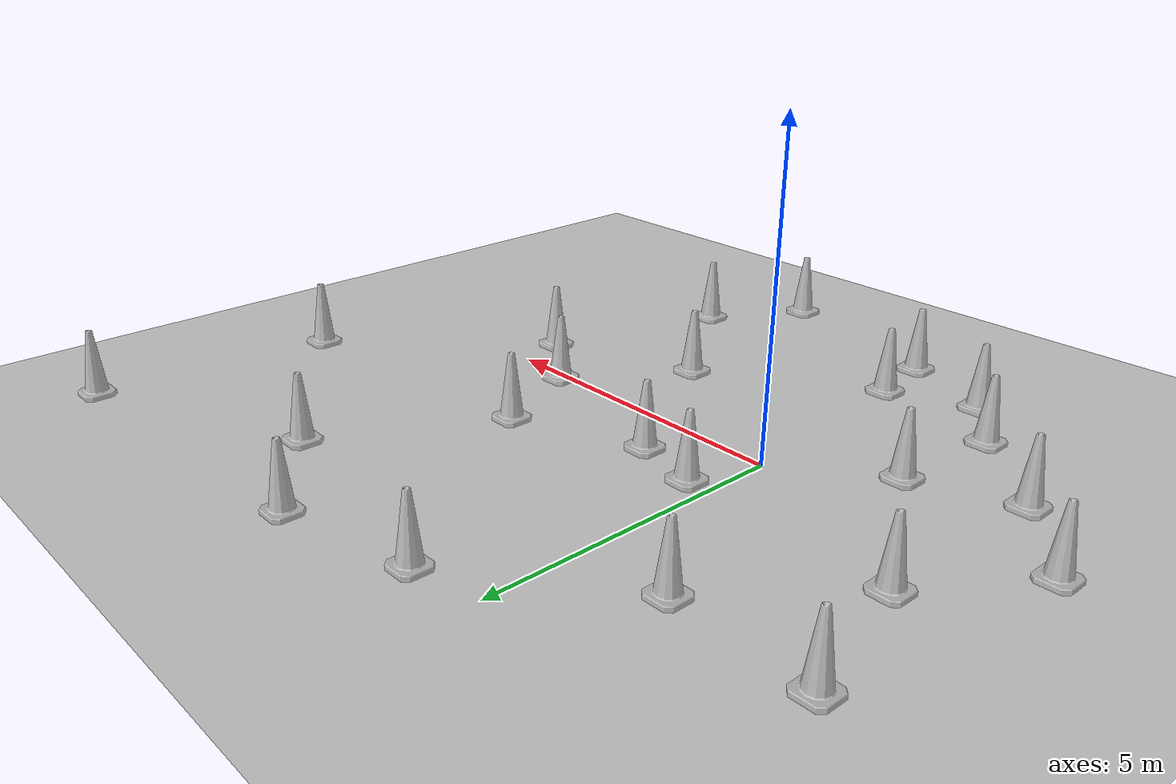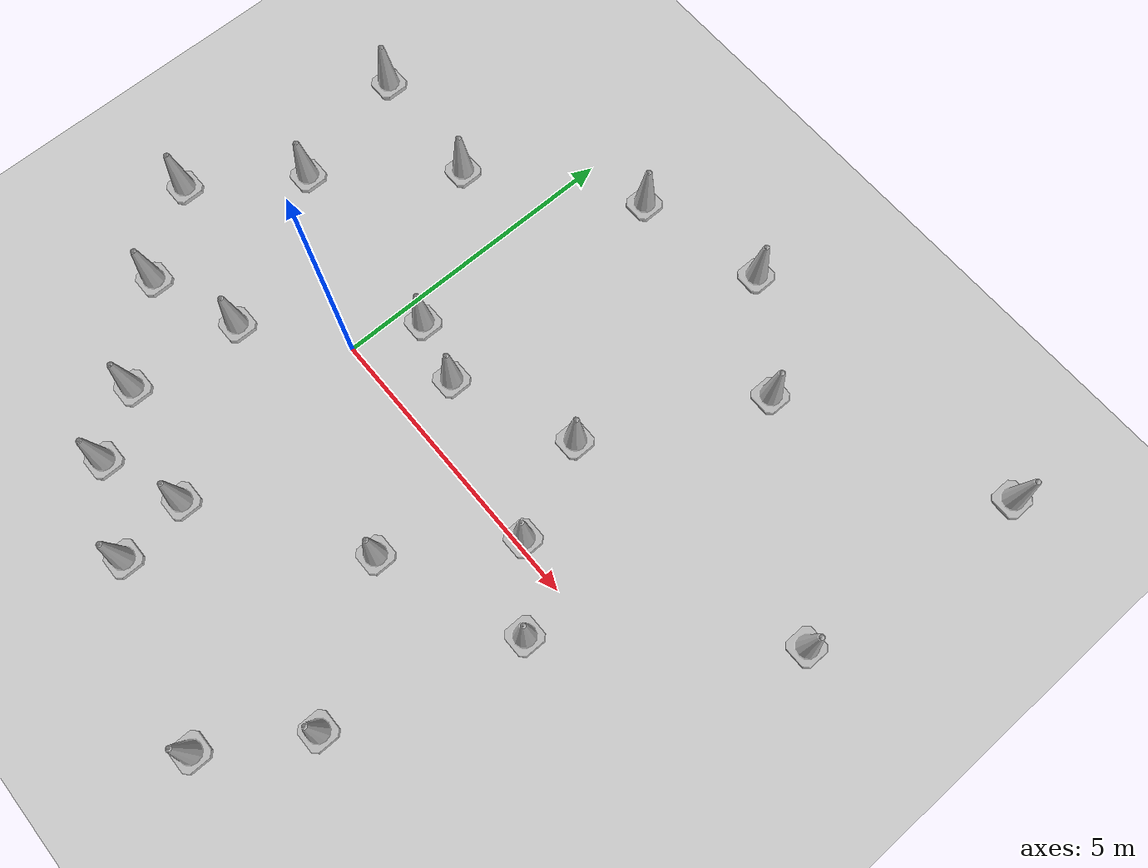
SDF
<sdf version="1.7">
 <world name="default">
  <light name="sun" type="directional">
   <pose>0 0 10 0 -0 0</pose>
   <diffuse>0.8 0.8 0.8 1</diffuse>
   <specular>0.2 0.2 0.2 1</specular>
   <attenuation>
    <range>1000</range>
    <constant>0.9</constant>
    <linear>0.01</linear>
    <quadratic>0.001</quadratic>
   </attenuation>
   <direction>-0.5 0.1 -0.9</direction>
   <spot><inner_angle>0</inner_angle><outer_angle>0</outer_angle><falloff>0</falloff></spot>
  </light>
  <model name="ground_plane">
   <static>1</static>
   <link name="link">
    <collision name="collision">
     <geometry><plane><normal>0 0 1</normal><size>100 100</size></plane></geometry>
     <surface><friction><ode><mu>100</mu><mu2>50</mu2></ode></friction></surface>
    </collision>
    <visual name="visual">
     <cast_shadows>0</cast_shadows>
     <geometry><plane><normal>0 0 1</normal><size>100 100</size></plane></geometry>
     <material>
      <script><uri>file://media/materials/scripts/gazebo.material</uri><name>Gazebo/Grey</name></script>
     </material>
    </visual>
   </link>
  </model>
  <gravity>0 0 -9.8</gravity>
  <magnetic_field>6e-06 2.3e-05 -4.2e-05</magnetic_field>
  <atmosphere type="adiabatic"/>
  <physics type="ode">
   <max_step_size>0.001</max_step_size>
   <real_time_factor>1</real_time_factor>
   <real_time_update_rate>1000</real_time_update_rate>
  </physics>
  <scene><ambient>0.4 0.4 0.4 1</ambient><background>0.7 0.7 0.7 1</background><shadows>1</shadows></scene>
  <spherical_coordinates>
   <surface_model>EARTH_WGS84</surface_model>
   <latitude_deg>0</latitude_deg>
   <longitude_deg>0</longitude_deg>
   <elevation>0</elevation>
   <heading_deg>0</heading_deg>
  </spherical_coordinates>
  <model name="Construction Cone">
   <link name="link">
    <collision name="collision">
     <geometry>
      <mesh><scale>10 10 10</scale><uri>model://construction_cone/meshes/construction_cone.dae</uri></mesh>
     </geometry>
    </collision>
    <visual name="visual">
     <geometry>
      <mesh><scale>10 10 10</scale><uri>model://construction_cone/meshes/construction_cone.dae</uri></mesh>
     </geometry>
    </visual>
    <inertial>
     <inertia><ixx>1</ixx><ixy>0</ixy><ixz>0</ixz><iyy>1</iyy><iyz>0</iyz><izz>1</izz></inertia>
     <mass>1</mass>
    </inertial>
   </link>
   <pose>0.371823 1.13284 -8e-06 1e-06 0 -0.003619</pose>
  </model>
  <model name="Construction Cone_clone">
   <link name="link">
    <collision name="collision">
     <geometry>
      <mesh><scale>10 10 10</scale><uri>model://construction_cone/meshes/construction_cone.dae</uri></mesh>
     </geometry>
    </collision>
    <visual name="visual">
     <geometry>
      <mesh><scale>10 10 10</scale><uri>model://construction_cone/meshes/construction_cone.dae</uri></mesh>
     </geometry>
    </visual>
    <inertial>
     <inertia><ixx>1</ixx><ixy>0</ixy><ixz>0</ixz><iyy>1</iyy><iyz>0</iyz><izz>1</izz></inertia>
     <mass>1</mass>
    </inertial>
   </link>
   <pose>-1.51379 -1.14365 -0 0 -0 0</pose>
  </model>
  <model name="Construction Cone_clone_0">
   <link name="link">
    <collision name="collision">
     <geometry>
      <mesh><scale>10 10 10</scale><uri>model://construction_cone/meshes/construction_cone.dae</uri></mesh>
     </geometry>
    </collision>
    <visual name="visual">
     <geometry>
      <mesh><scale>10 10 10</scale><uri>model://construction_cone/meshes/construction_cone.dae</uri></mesh>
     </geometry>
    </visual>
    <inertial>
     <inertia><ixx>1</ixx><ixy>0</ixy><ixz>0</ixz><iyy>1</iyy><iyz>0</iyz><izz>1</izz></inertia>
     <mass>1</mass>
    </inertial>
   </link>
   <pose>-4.09347 -0.382522 -0 0 -1e-06 0</pose>
  </model>
  <model name="Construction Cone_clone_1">
   <link name="link">
    <collision name="collision">
     <geometry>
      <mesh><scale>10 10 10</scale><uri>model://construction_cone/meshes/construction_cone.dae</uri></mesh>
     </geometry>
    </collision>
    <visual name="visual">
     <geometry>
      <mesh><scale>10 10 10</scale><uri>model://construction_cone/meshes/construction_cone.dae</uri></mesh>
     </geometry>
    </visual>
    <inertial>
     <inertia><ixx>1</ixx><ixy>0</ixy><ixz>0</ixz><iyy>1</iyy><iyz>0</iyz><izz>1</izz></inertia>
     <mass>1</mass>
    </inertial>
   </link>
   <pose>-1.69701 -3.00676 0 -1e-06 0 0</pose>
  </model>
  <model name="Construction Cone_clone_2">
   <link name="link">
    <collision name="collision">
     <geometry>
      <mesh><scale>10 10 10</scale><uri>model://construction_cone/meshes/construction_cone.dae</uri></mesh>
     </geometry>
    </collision>
    <visual name="visual">
     <geometry>
      <mesh><scale>10 10 10</scale><uri>model://construction_cone/meshes/construction_cone.dae</uri></mesh>
     </geometry>
    </visual>
    <inertial>
     <inertia><ixx>1</ixx><ixy>0</ixy><ixz>0</ixz><iyy>1</iyy><iyz>0</iyz><izz>1</izz></inertia>
     <mass>1</mass>
    </inertial>
   </link>
   <pose>8.42024 6.12625 -0 1e-06 -0 0</pose>
  </model>
  <model name="Construction Cone_clone_3">
   <link name="link">
    <collision name="collision">
     <geometry>
      <mesh><scale>10 10 10</scale><uri>model://construction_cone/meshes/construction_cone.dae</uri></mesh>
     </geometry>
    </collision>
    <visual name="visual">
     <geometry>
      <mesh><scale>10 10 10</scale><uri>model://construction_cone/meshes/construction_cone.dae</uri></mesh>
     </geometry>
    </visual>
    <inertial>
     <inertia><ixx>1</ixx><ixy>0</ixy><ixz>0</ixz><iyy>1</iyy><iyz>0</iyz><izz>1</izz></inertia>
     <mass>1</mass>
    </inertial>
   </link>
   <pose>2.85409 -1.72147 -3e-06 -4e-06 -0 6.6e-05</pose>
  </model>
  <model name="Construction Cone_clone_4">
   <link name="link">
    <collision name="collision">
     <geometry>
      <mesh><scale>10 10 10</scale><uri>model://construction_cone/meshes/construction_cone.dae</uri></mesh>
     </geometry>
    </collision>
    <visual name="visual">
     <geometry>
      <mesh><scale>10 10 10</scale><uri>model://construction_cone/meshes/construction_cone.dae</uri></mesh>
     </geometry>
    </visual>
    <inertial>
     <inertia><ixx>1</ixx><ixy>0</ixy><ixz>0</ixz><iyy>1</iyy><iyz>0</iyz><izz>1</izz></inertia>
     <mass>1</mass>
    </inertial>
   </link>
   <pose>7.9771 2.22314 0 -0 -0 -0</pose>
  </model>
  <model name="Construction Cone_clone_5">
   <link name="link">
    <collision name="collision">
     <geometry>
      <mesh><scale>10 10 10</scale><uri>model://construction_cone/meshes/construction_cone.dae</uri></mesh>
     </geometry>
    </collision>
    <visual name="visual">
     <geometry>
      <mesh><scale>10 10 10</scale><uri>model://construction_cone/meshes/construction_cone.dae</uri></mesh>
     </geometry>
    </visual>
    <inertial>
     <inertia><ixx>1</ixx><ixy>0</ixy><ixz>0</ixz><iyy>1</iyy><iyz>0</iyz><izz>1</izz></inertia>
     <mass>1</mass>
    </inertial>
   </link>
   <pose>0.298259 -3.4579 -1e-06 1e-06 -2e-06 -0</pose>
  </model>
  <model name="Construction Cone_clone_6">
   <link name="link">
    <collision name="collision">
     <geometry>
      <mesh><scale>10 10 10</scale><uri>model://construction_cone/meshes/construction_cone.dae</uri></mesh>
     </geometry>
    </collision>
    <visual name="visual">
     <geometry>
      <mesh><scale>10 10 10</scale><uri>model://construction_cone/meshes/construction_cone.dae</uri></mesh>
     </geometry>
    </visual>
    <inertial>
     <inertia><ixx>1</ixx><ixy>0</ixy><ixz>0</ixz><iyy>1</iyy><iyz>0</iyz><izz>1</izz></inertia>
     <mass>1</mass>
    </inertial>
   </link>
   <pose>1.42034 0.872982 -0 0 0 -0.000423</pose>
  </model>
  <model name="Construction Cone_clone_7">
   <link name="link">
    <collision name="collision">
     <geometry>
      <mesh><scale>10 10 10</scale><uri>model://construction_cone/meshes/construction_cone.dae</uri></mesh>
     </geometry>
    </collision>
    <visual name="visual">
     <geometry>
      <mesh><scale>10 10 10</scale><uri>model://construction_cone/meshes/construction_cone.dae</uri></mesh>
     </geometry>
    </visual>
    <inertial>
     <inertia><ixx>1</ixx><ixy>0</ixy><ixz>0</ixz><iyy>1</iyy><iyz>0</iyz><izz>1</izz></inertia>
     <mass>1</mass>
    </inertial>
   </link>
   <pose>3.42917 1.69624 -0 0 -0 0</pose>
  </model>
  <model name="Construction Cone_clone_8">
   <link name="link">
    <collision name="collision">
     <geometry>
      <mesh><scale>10 10 10</scale><uri>model://construction_cone/meshes/construction_cone.dae</uri></mesh>
     </geometry>
    </collision>
    <visual name="visual">
     <geometry>
      <mesh><scale>10 10 10</scale><uri>model://construction_cone/meshes/construction_cone.dae</uri></mesh>
     </geometry>
    </visual>
    <inertial>
     <inertia><ixx>1</ixx><ixy>0</ixy><ixz>0</ixz><iyy>1</iyy><iyz>0</iyz><izz>1</izz></inertia>
     <mass>1</mass>
    </inertial>
   </link>
   <pose>5.20561 -0.793709 -0 0 -0 0</pose>
  </model>
  <model name="Construction Cone_clone_9">
   <link name="link">
    <collision name="collision">
     <geometry>
      <mesh><scale>10 10 10</scale><uri>model://construction_cone/meshes/construction_cone.dae</uri></mesh>
     </geometry>
    </collision>
    <visual name="visual">
     <geometry>
      <mesh><scale>10 10 10</scale><uri>model://construction_cone/meshes/construction_cone.dae</uri></mesh>
     </geometry>
    </visual>
    <inertial>
     <inertia><ixx>1</ixx><ixy>0</ixy><ixz>0</ixz><iyy>1</iyy><iyz>0</iyz><izz>1</izz></inertia>
     <mass>1</mass>
    </inertial>
   </link>
   <pose>3.39468 -5.41833 -0 0 -0 0</pose>
  </model>
  <model name="Construction Cone_clone_10">
   <link name="link">
    <collision name="collision">
     <geometry>
      <mesh><scale>10 10 10</scale><uri>model://construction_cone/meshes/construction_cone.dae</uri></mesh>
     </geometry>
    </collision>
    <visual name="visual">
     <geometry>
      <mesh><scale>10 10 10</scale><uri>model://construction_cone/meshes/construction_cone.dae</uri></mesh>
     </geometry>
    </visual>
    <inertial>
     <inertia><ixx>1</ixx><ixy>0</ixy><ixz>0</ixz><iyy>1</iyy><iyz>0</iyz><izz>1</izz></inertia>
     <mass>1</mass>
    </inertial>
   </link>
   <pose>4.08113 0.111862 -0 0 -0 0.000155</pose>
  </model>
  <model name="Construction Cone_clone_11">
   <link name="link">
    <collision name="collision">
     <geometry>
      <mesh><scale>10 10 10</scale><uri>model://construction_cone/meshes/construction_cone.dae</uri></mesh>
     </geometry>
    </collision>
    <visual name="visual">
     <geometry>
      <mesh><scale>10 10 10</scale><uri>model://construction_cone/meshes/construction_cone.dae</uri></mesh>
     </geometry>
    </visual>
    <inertial>
     <inertia><ixx>1</ixx><ixy>0</ixy><ixz>0</ixz><iyy>1</iyy><iyz>0</iyz><izz>1</izz></inertia>
     <mass>1</mass>
    </inertial>
   </link>
   <pose>4.85087 4.49219 -0 -0 -0 -0.00461</pose>
  </model>
  <model name="Construction Cone_clone_12">
   <link name="link">
    <collision name="collision">
     <geometry>
      <mesh><scale>10 10 10</scale><uri>model://construction_cone/meshes/construction_cone.dae</uri></mesh>
     </geometry>
    </collision>
    <visual name="visual">
     <geometry>
      <mesh><scale>10 10 10</scale><uri>model://construction_cone/meshes/construction_cone.dae</uri></mesh>
     </geometry>
    </visual>
    <inertial>
     <inertia><ixx>1</ixx><ixy>0</ixy><ixz>0</ixz><iyy>1</iyy><iyz>0</iyz><izz>1</izz></inertia>
     <mass>1</mass>
    </inertial>
   </link>
   <pose>3.22121 5.73686 -1e-05 -1e-06 0 0</pose>
  </model>
  <model name="Construction Cone_clone_13">
   <link name="link">
    <collision name="collision">
     <geometry>
      <mesh><scale>10 10 10</scale><uri>model://construction_cone/meshes/construction_cone.dae</uri></mesh>
     </geometry>
    </collision>
    <visual name="visual">
     <geometry>
      <mesh><scale>10 10 10</scale><uri>model://construction_cone/meshes/construction_cone.dae</uri></mesh>
     </geometry>
    </visual>
    <inertial>
     <inertia><ixx>1</ixx><ixy>0</ixy><ixz>0</ixz><iyy>1</iyy><iyz>0</iyz><izz>1</izz></inertia>
     <mass>1</mass>
    </inertial>
   </link>
   <pose>1.08074 5.22824 -0 0 -1e-06 0</pose>
  </model>
  <model name="Construction Cone_clone_14">
   <link name="link">
    <collision name="collision">
     <geometry>
      <mesh><scale>10 10 10</scale><uri>model://construction_cone/meshes/construction_cone.dae</uri></mesh>
     </geometry>
    </collision>
    <visual name="visual">
     <geometry>
      <mesh><scale>10 10 10</scale><uri>model://construction_cone/meshes/construction_cone.dae</uri></mesh>
     </geometry>
    </visual>
    <inertial>
     <inertia><ixx>1</ixx><ixy>0</ixy><ixz>0</ixz><iyy>1</iyy><iyz>0</iyz><izz>1</izz></inertia>
     <mass>1</mass>
    </inertial>
   </link>
   <pose>-3.02736 -1.71107 -0 0 -0 0</pose>
  </model>
  <model name="Construction Cone_clone_15">
   <link name="link">
    <collision name="collision">
     <geometry>
      <mesh><scale>10 10 10</scale><uri>model://construction_cone/meshes/construction_cone.dae</uri></mesh>
     </geometry>
    </collision>
    <visual name="visual">
     <geometry>
      <mesh><scale>10 10 10</scale><uri>model://construction_cone/meshes/construction_cone.dae</uri></mesh>
     </geometry>
    </visual>
    <inertial>
     <inertia><ixx>1</ixx><ixy>0</ixy><ixz>0</ixz><iyy>1</iyy><iyz>0</iyz><izz>1</izz></inertia>
     <mass>1</mass>
    </inertial>
   </link>
   <pose>0.471518 -4.61221 -1e-05 0 -0 0</pose>
  </model>
  <model name="Construction Cone_clone_16">
   <link name="link">
    <collision name="collision">
     <geometry>
      <mesh><scale>10 10 10</scale><uri>model://construction_cone/meshes/construction_cone.dae</uri></mesh>
     </geometry>
    </collision>
    <visual name="visual">
     <geometry>
      <mesh><scale>10 10 10</scale><uri>model://construction_cone/meshes/construction_cone.dae</uri></mesh>
     </geometry>
    </visual>
    <inertial>
     <inertia><ixx>1</ixx><ixy>0</ixy><ixz>0</ixz><iyy>1</iyy><iyz>0</iyz><izz>1</izz></inertia>
     <mass>1</mass>
    </inertial>
   </link>
   <pose>4.3333 -3.87619 -0 0 -0 0</pose>
  </model>
  <model name="Construction Cone_clone_17">
   <link name="link">
    <collision name="collision">
     <geometry>
      <mesh><scale>10 10 10</scale><uri>model://construction_cone/meshes/construction_cone.dae</uri></mesh>
     </geometry>
    </collision>
    <visual name="visual">
     <geometry>
      <mesh><scale>10 10 10</scale><uri>model://construction_cone/meshes/construction_cone.dae</uri></mesh>
     </geometry>
    </visual>
    <inertial>
     <inertia><ixx>1</ixx><ixy>0</ixy><ixz>0</ixz><iyy>1</iyy><iyz>0</iyz><izz>1</izz></inertia>
     <mass>1</mass>
    </inertial>
   </link>
   <pose>-1.34428 3.33298 -1e-05 -1e-06 0 0</pose>
  </model>
  <model name="Construction Cone_clone_18">
   <link name="link">
    <collision name="collision">
     <geometry>
      <mesh><scale>10 10 10</scale><uri>model://construction_cone/meshes/construction_cone.dae</uri></mesh>
     </geometry>
    </collision>
    <visual name="visual">
     <geometry>
      <mesh><scale>10 10 10</scale><uri>model://construction_cone/meshes/construction_cone.dae</uri></mesh>
     </geometry>
    </visual>
    <inertial>
     <inertia><ixx>1</ixx><ixy>0</ixy><ixz>0</ixz><iyy>1</iyy><iyz>0</iyz><izz>1</izz></inertia>
     <mass>1</mass>
    </inertial>
   </link>
   <pose>-3.48857 3.43115 -0 0 -1e-06 0</pose>
  </model>
  <model name="Construction Cone_clone_19">
   <link name="link">
    <collision name="collision">
     <geometry>
      <mesh><scale>10 10 10</scale><uri>model://construction_cone/meshes/construction_cone.dae</uri></mesh>
     </geometry>
    </collision>
    <visual name="visual">
     <geometry>
      <mesh><scale>10 10 10</scale><uri>model://construction_cone/meshes/construction_cone.dae</uri></mesh>
     </geometry>
    </visual>
    <inertial>
     <inertia><ixx>1</ixx><ixy>0</ixy><ixz>0</ixz><iyy>1</iyy><iyz>0</iyz><izz>1</izz></inertia>
     <mass>1</mass>
    </inertial>
   </link>
   <pose>-2.94523 1.31045 -1e-05 0 -0 0</pose>
  </model>
  <model name="Construction Cone_clone_20">
   <link name="link">
    <collision name="collision">
     <geometry>
      <mesh><scale>10 10 10</scale><uri>model://construction_cone/meshes/construction_cone.dae</uri></mesh>
     </geometry>
    </collision>
    <visual name="visual">
     <geometry>
      <mesh><scale>10 10 10</scale><uri>model://construction_cone/meshes/construction_cone.dae</uri></mesh>
     </geometry>
    </visual>
    <inertial>
     <inertia><ixx>1</ixx><ixy>0</ixy><ixz>0</ixz><iyy>1</iyy><iyz>0</iyz><izz>1</izz></inertia>
     <mass>1</mass>
    </inertial>
   </link>
   <pose>-1 -4 -1e-05 -1e-06 0 0</pose>
  </model>
 </world>
</sdf>
